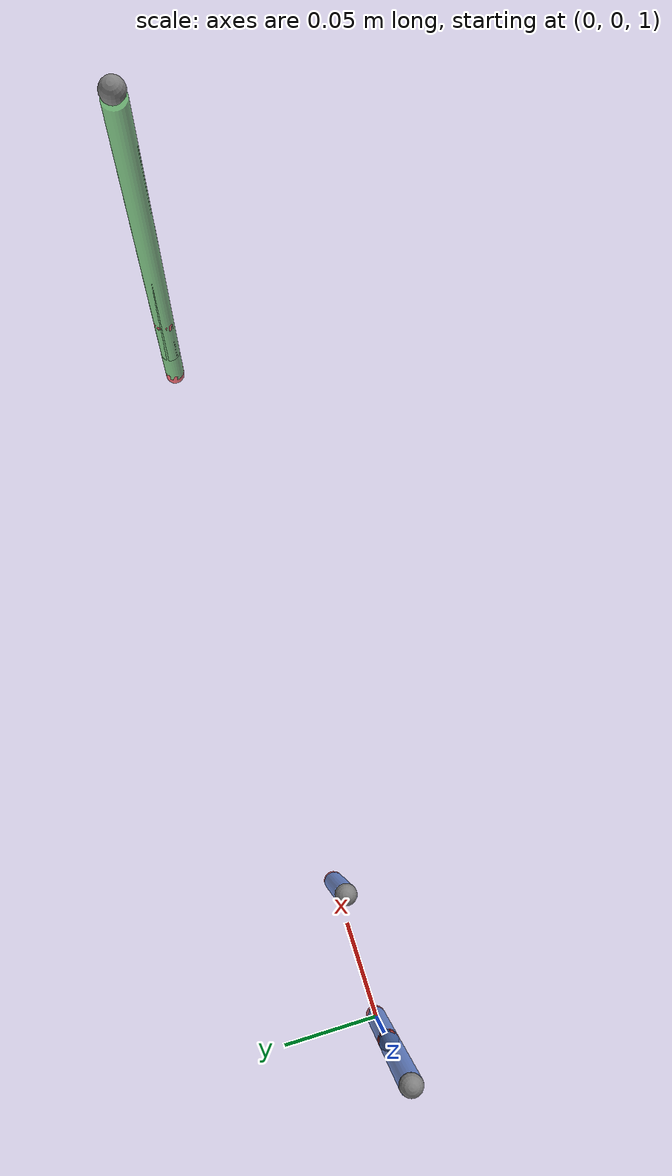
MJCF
<?xml version='1.0' encoding='UTF-8'?>
<mujoco>

    <option timestep="1e-3"/>
    <option gravity="0 0 -9.8"/>

    <asset>
        <texture type="skybox" builtin="gradient" rgb1="0.9 0.9 1.0" rgb2="0.4 0.4 0.6" width="256" height="256"/>
        <texture name="floor" type="2d" builtin="checker" rgb1="0.2 0.2 0.2" rgb2="0.5 0.5 0.5" width="300" height="300"/>
        <material name="floor_mat" texture="floor" texrepeat="8 8" reflectance="0.1"/>
        <material name="node_color" rgba="0.95 0.2 0.2 0.7"/>
        <material name="rod_color" rgba="0.25 0.45 0.85 0.7"/>
        <material name="slider_color" rgba="0.3 0.7 0.3 0.7"/>
    </asset>

    <worldbody>

        <light pos="2 1 5" dir="0 0 -1" directional="true"/>
        <light pos="1 0 5" directional="false"/>

        <geom type="plane" size="0.6 0.6 0.1" material="floor_mat"/>

        <body name="arm1_base" pos="0 0 1" euler="0 0 0">
            <joint name="pivot1" type="hinge" axis="0 -1 0" stiffness="0" springref="0" damping="0"/>
            <geom name="base_node" type="cylinder" pos="0 0 0" size="0.005 0.005" material="node_color" euler="0 0 0" contype="0"/>
            <geom name="first_segment" type="cylinder" pos="0 0 0.0365" size="0.005 0.0365" material="rod_color" euler="0 0 0" contype="0"/>
            <site name="privA" size="0.005" pos="0 0 0.07"/>

            <body name="arm1_extension" pos="0 0 0.073" euler="0 0 0">
                <joint name="elbow1" type="hinge" axis="0 -1 0" stiffness="0" springref="0" damping="0.1"/>
                <geom name="middle_node" type="cylinder" pos="0 0 0" size="0.005 0.005" material="node_color" euler="0 0 0" contype="0"/>
                <geom name="second_segment" type="cylinder" pos="0 0 0.04745" size="0.005 0.04745" material="rod_color" euler="0 0 0" contype="0"/>
                <site name="end_effector1" size="0.005" pos="0 0 0.0949"/>
            </body>
        </body>

        <body name="arm2_base" pos="0.073 0 1" euler="0 0 0">
            <joint name="pivot2" type="hinge" axis="0 -1 0" stiffness="0" springref="0" damping="0.1"/>
            <geom name="side_node" type="cylinder" pos="0 0 0" size="0.005 0.005" material="node_color" euler="0 0 0" contype="0"/>
            <geom name="side_rod" type="cylinder" pos="0 0 0.05475" size="0.005 0.05475" material="rod_color" euler="0 0 0" contype="0"/>
            <site name="end_effector2" size="0.005" pos="0 0 0.1095"/>
        </body>

        <body name="slider_assembly" pos="0.365 0 1" euler="0 0 0">
            <joint name="fixed_pivot" type="hinge" axis="0 -1 0" stiffness="0" springref="0" damping="0"/>
            <geom name="anchor_node" type="cylinder" pos="0 0 0" size="0.005 0.005" material="node_color" euler="0 0 0" contype="0"/>
            <geom name="vertical_rod" type="cylinder" pos="0 0 0.12" size="0.005 0.12" material="slider_color" euler="0 0 0" contype="0"/>

            <body name="sliding_part" pos="0 0 0.07" euler="0 0 0">
                <joint name="prismatic" type="slide" axis="0 0 1" limited="true" range="-0.1 0.1" stiffness="0" springref="0" damping="0"/>
                <geom name="slider_node" type="cylinder" pos="0 0 0" size="0.005 0.005" material="node_color" euler="0 0 0" contype="0"/>
                <geom name="extended_rod" type="cylinder" pos="0 0 0.08" size="0.005 0.12" material="slider_color" euler="0 0 0" contype="0"/>
                <site name="end_effector3" size="0.005" pos="0 0 0.205"/>
            </body>
        </body>

    </worldbody>

    <equality>
        <connect site1="end_effector1" site2="end_effector2"/>
        <connect site1="end_effector1" site2="end_effector3"/>
    </equality>
    <actuator>
        <position name="prismatic" joint="prismatic"/>
    </actuator>

    <sensor>
        <framepos objtype="site" objname="privA"/>
    </sensor>

</mujoco>
